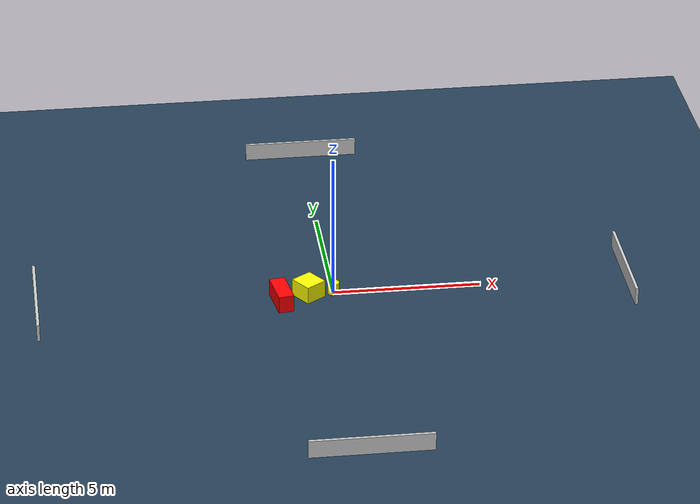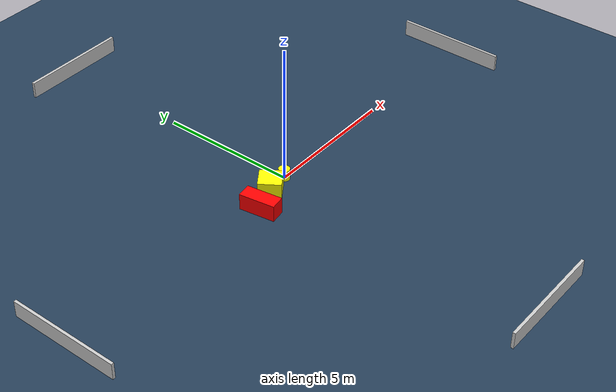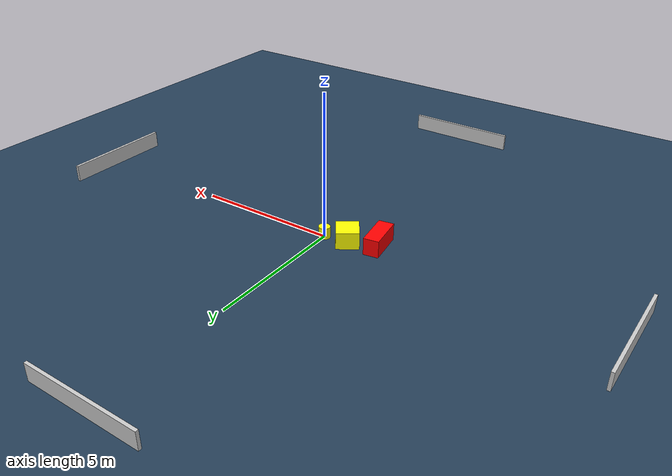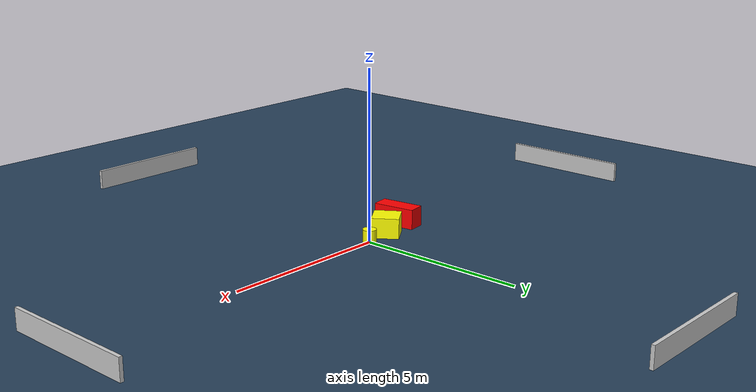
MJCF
<?xml version="1.0" ?>
<mujoco model="generated_environment">
  <option timestep="0.01" integrator="RK4" cone="elliptic"/>
  <default>
    <geom density="1"/>
  </default>
  <asset>
    <texture builtin="gradient" height="3072" name="skybox" rgb1="0.3 0.5 0.7" rgb2="0 0 0" type="skybox" width="512"/>
    <texture builtin="checker" height="300" name="groundplane" rgb1="0.2 0.3 0.4" rgb2="0.1 0.2 0.3" type="2d" width="300"/>
    <material name="groundplane" reflectance="0.2" texrepeat="5 5" texture="groundplane"/>
  </asset>
  <worldbody>
    <light dir="0 0 -1" directional="true" pos="0 0 1.5"/>
    <geom condim="3" friction="0.5 0.005 0.001" material="groundplane" name="floor" pos="0 0 0" size="0 0 0.05" type="plane"/>
    <body name="walls">
      <geom name="wall_1" condim="4" pos="-10.0 0.0 0.3" rgba="0.800000011920929 0.800000011920929 0.800000011920929 1.0" size="0.05 2.0 0.3" type="box"/>
      <geom name="wall_2" condim="4" pos="10.0 0.0 0.3" rgba="0.800000011920929 0.800000011920929 0.800000011920929 1.0" size="0.05 2.0 0.3" type="box"/>
      <geom name="wall_3" condim="4" pos="0.0 -10.0 0.3" rgba="0.800000011920929 0.800000011920929 0.800000011920929 1.0" size="2.0 0.05 0.3" type="box"/>
      <geom name="wall_4" condim="4" pos="0.0 10.0 0.3" rgba="0.800000011920929 0.800000011920929 0.800000011920929 1.0" size="2.0 0.05 0.3" type="box"/>
    </body>
    <body name="robot">
      <joint name="joint_x" type="slide" pos="0 0 0" axis="1 0 0"/>
      <joint name="joint_y" type="slide" pos="0 0 0" axis="0 1 0"/>
      <geom name="robot" type="cylinder" pos="0.0 0.0 0.2" size="0.2 0.2 0.0" mass="5.0" friction="1.0 0.005 0.0001" condim="4" rgba="1.0 1.0 0.0 1.0"/>
    </body>
    <body name="obstacle_1_movable">
      <geom name="obstacle_1_movable" condim="4" pos="-0.8423518859299944 -0.0997469196041871 0.3" euler="0 0 214.384938483545" friction="0.0 0.005 0.001" rgba="1.0 1.0 0.0 1.0" size="0.38724905219746397 0.40142078343903365 0.3" type="box" mass="0.1"/>
      <joint type="free"/>
    </body>
    <body name="obstacle_2_static">
      <geom name="obstacle_2_static" condim="4" pos="-1.7995754812705647 -0.48206458057698653 0.3" euler="0 0 8.759323903717515" friction="0.0 0.005 0.001" rgba="1.0 0.0 0.0 1.0" size="0.26424683268619653 0.6409778355650457 0.3" type="box"/>
    </body>
  </worldbody>
  <actuator>
    <motor name="actuator_x" joint="joint_x" gear="1" ctrlrange="-1 1"/>
    <motor name="actuator_y" joint="joint_y" gear="1" ctrlrange="-1 1"/>
  </actuator>
</mujoco>
